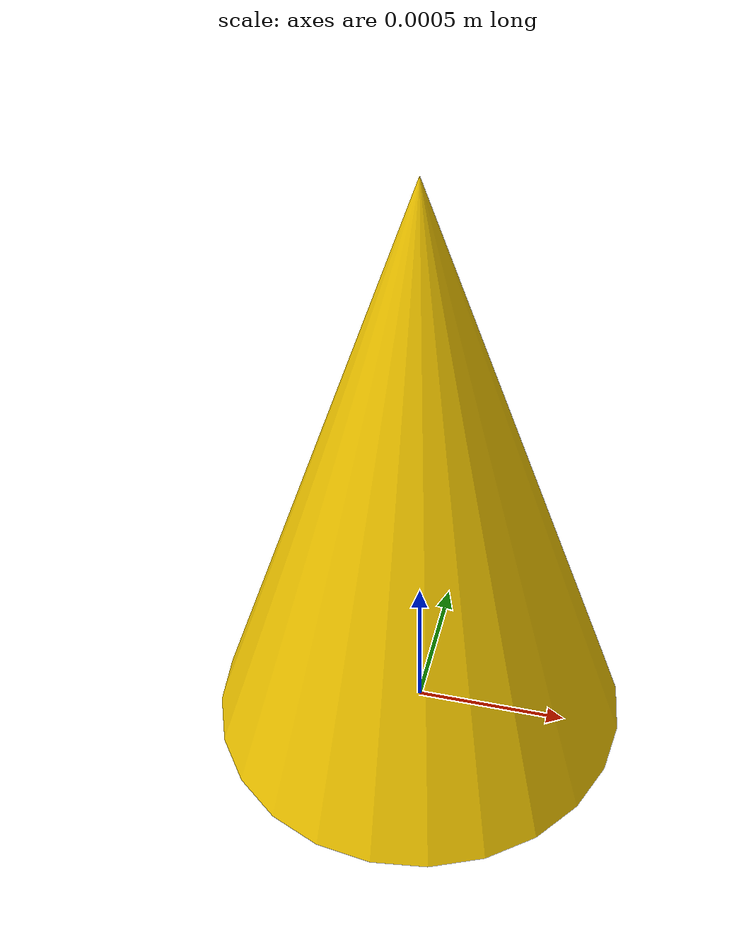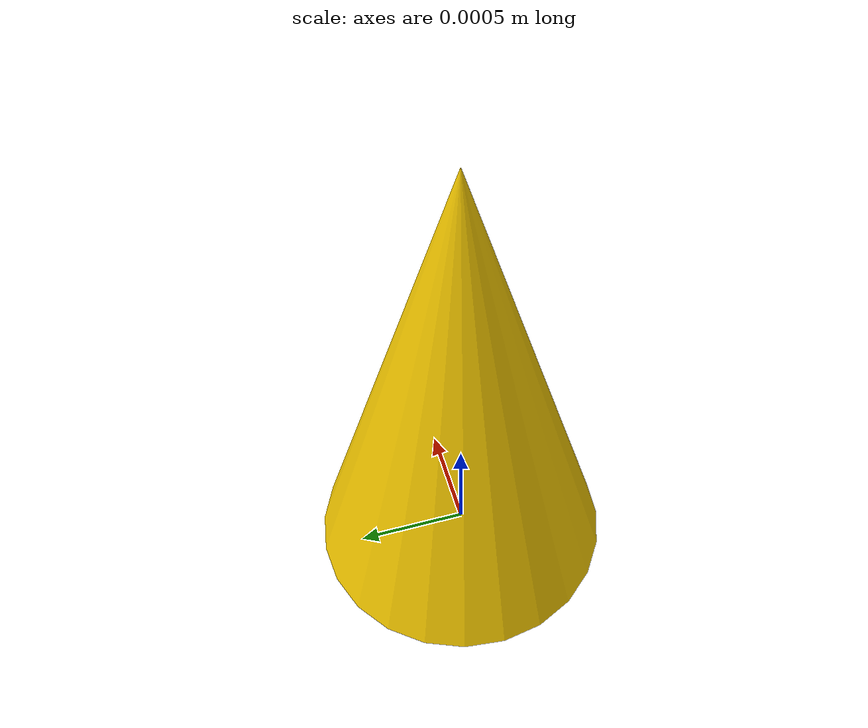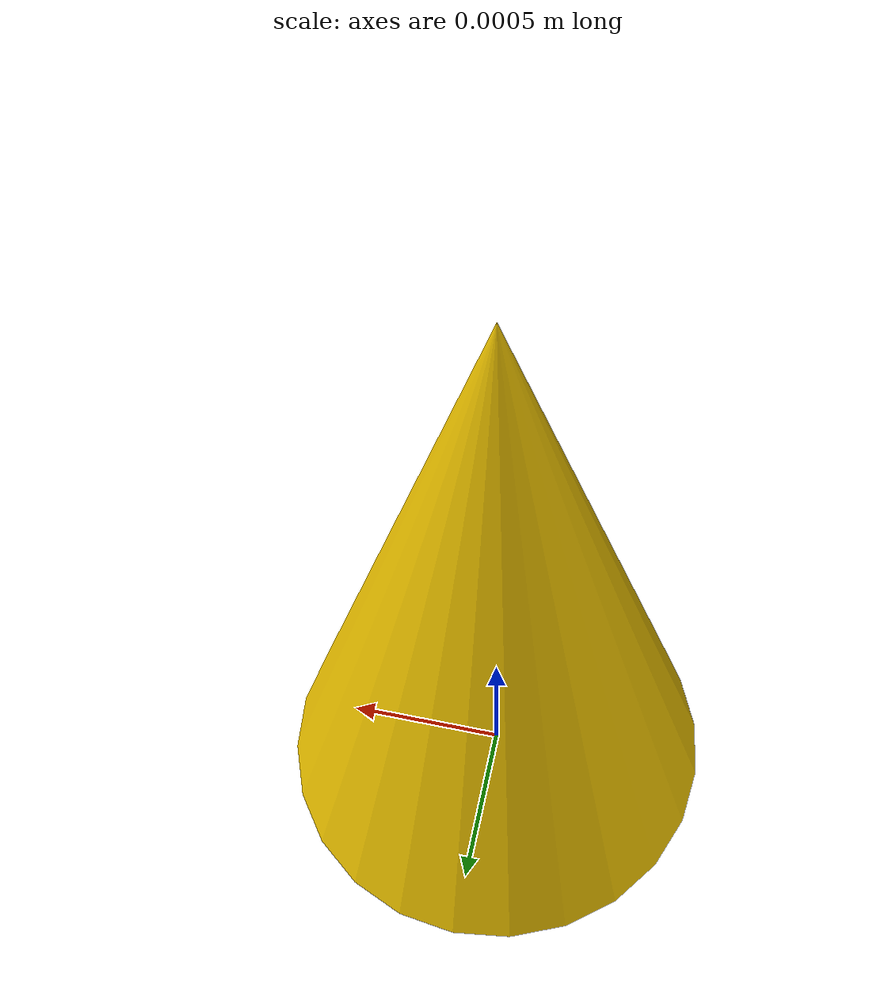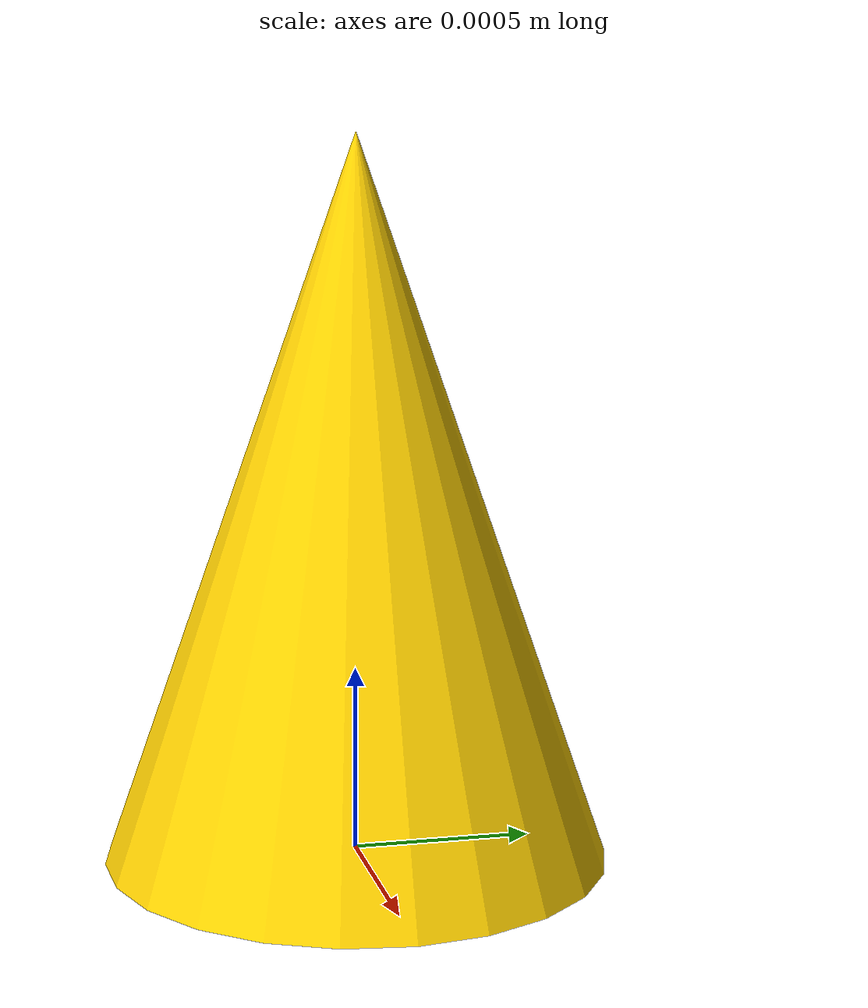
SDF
<?xml version="1.0" ?>
<sdf version="1.6">
  <model name="cone_yellow">
    <static>true</static>
    <link name="link">
      <visual name="visual">
        <geometry>
          <mesh>
            <uri>model://cone_yellow/meshes/cone.stl</uri>
            <scale>0.006 0.006 0.006</scale>
          </mesh>
        </geometry>
        <material>
          <ambient>1.0 0.82 0.0 1</ambient>
	  <diffuse>1.0 0.82 0.0 1</diffuse>
        </material>
      </visual>
      <collision name="collision">
        <geometry>
          <mesh>
            <uri>model://cone_yellow/meshes/cone.stl</uri>
            <scale>0.006 0.006 0.006</scale>
          </mesh>
        </geometry>
      </collision>
      <inertial>
        <mass>0.1</mass>
        <inertia>
          <ixx>0.0001</ixx>
          <iyy>0.0001</iyy>
          <izz>0.0001</izz>
          <ixy>0.0</ixy>
          <ixz>0.0</ixz>
          <iyz>0.0</iyz>
        </inertia>
      </inertial>
    </link>
  </model>
</sdf>
